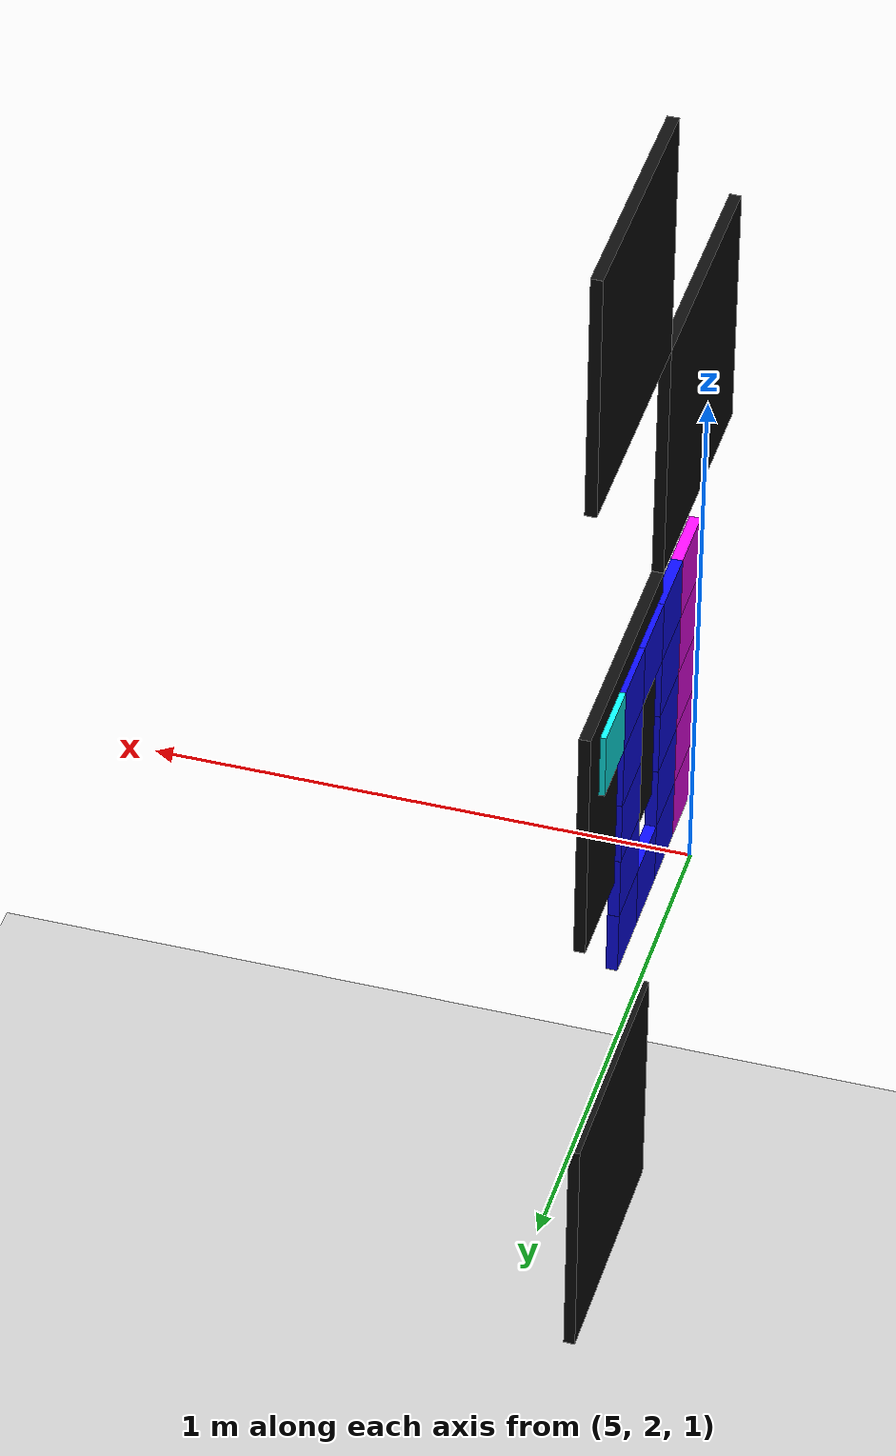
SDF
<sdf version="1.6">
 <world name="collab_workshop">
  <include><uri>model://ground_plane</uri></include>
  <include><uri>model://sun</uri></include>
  <model name="east_b_tile_1_2">
   <pose>4.98 2.625 0.8249999999999998 0 0 0.0</pose>
   <static>true</static>
   <link name="link">
    <visual name="visual">
     <geometry><box><size>0.02 0.45 0.45</size></box></geometry>
     <material><ambient>0.05 0.05 0.05 1</ambient><diffuse>0.05 0.05 0.05 1</diffuse></material>
    </visual>
   </link>
  </model>
  <model name="east_b_tile_3_2">
   <pose>4.98 2.625 1.725 0 0 0.0</pose>
   <static>true</static>
   <link name="link">
    <visual name="visual">
     <geometry><box><size>0.02 0.45 0.45</size></box></geometry>
     <material><ambient>0.05 0.05 0.05 1</ambient><diffuse>0.05 0.05 0.05 1</diffuse></material>
    </visual>
   </link>
  </model>
  <model name="east_b_tile_4_1">
   <pose>4.98 2.175 2.175 0 0 0.0</pose>
   <static>true</static>
   <link name="link">
    <visual name="visual">
     <geometry><box><size>0.02 0.45 0.45</size></box></geometry>
     <material><ambient>0.05 0.05 0.05 1</ambient><diffuse>0.05 0.05 0.05 1</diffuse></material>
    </visual>
   </link>
  </model>
  <model name="east_b_tile_5_2">
   <pose>4.98 2.625 2.625 0 0 0.0</pose>
   <static>true</static>
   <link name="link">
    <visual name="visual">
     <geometry><box><size>0.02 0.45 0.45</size></box></geometry>
     <material><ambient>0.05 0.05 0.05 1</ambient><diffuse>0.05 0.05 0.05 1</diffuse></material>
    </visual>
   </link>
  </model>
  <model name="fac_letter_3_0_2">
   <pose>4.97 2.7300000000000004 1.85 0 0 0.0</pose>
   <static>true</static>
   <link name="link">
    <visual name="visual">
     <geometry><box><size>0.02 0.12 0.12</size></box></geometry>
     <material><ambient>0.049 0.98 0.98 1</ambient><diffuse>0.049 0.98 0.98 1</diffuse></material>
    </visual>
   </link>
  </model>
  <model name="fac_letter_4_0_0">
   <pose>4.97 2.6100000000000003 1.85 0 0 0.0</pose>
   <static>true</static>
   <link name="link">
    <visual name="visual">
     <geometry><box><size>0.02 0.12 0.12</size></box></geometry>
     <material><ambient>0.049 0.049 0.98 1</ambient><diffuse>0.049 0.049 0.98 1</diffuse></material>
    </visual>
   </link>
  </model>
  <model name="fac_letter_4_0_1">
   <pose>4.97 2.49 1.85 0 0 0.0</pose>
   <static>true</static>
   <link name="link">
    <visual name="visual">
     <geometry><box><size>0.02 0.12 0.12</size></box></geometry>
     <material><ambient>0.049 0.049 0.98 1</ambient><diffuse>0.049 0.049 0.98 1</diffuse></material>
    </visual>
   </link>
  </model>
  <model name="fac_letter_4_0_2">
   <pose>4.97 2.37 1.85 0 0 0.0</pose>
   <static>true</static>
   <link name="link">
    <visual name="visual">
     <geometry><box><size>0.02 0.12 0.12</size></box></geometry>
     <material><ambient>0.049 0.049 0.98 1</ambient><diffuse>0.049 0.049 0.98 1</diffuse></material>
    </visual>
   </link>
  </model>
  <model name="fac_letter_4_1_0">
   <pose>4.97 2.6100000000000003 1.73 0 0 0.0</pose>
   <static>true</static>
   <link name="link">
    <visual name="visual">
     <geometry><box><size>0.02 0.12 0.12</size></box></geometry>
     <material><ambient>0.049 0.049 0.98 1</ambient><diffuse>0.049 0.049 0.98 1</diffuse></material>
    </visual>
   </link>
  </model>
  <model name="fac_letter_4_1_2">
   <pose>4.97 2.37 1.73 0 0 0.0</pose>
   <static>true</static>
   <link name="link">
    <visual name="visual">
     <geometry><box><size>0.02 0.12 0.12</size></box></geometry>
     <material><ambient>0.049 0.049 0.98 1</ambient><diffuse>0.049 0.049 0.98 1</diffuse></material>
    </visual>
   </link>
  </model>
  <model name="fac_letter_4_2_0">
   <pose>4.97 2.6100000000000003 1.61 0 0 0.0</pose>
   <static>true</static>
   <link name="link">
    <visual name="visual">
     <geometry><box><size>0.02 0.12 0.12</size></box></geometry>
     <material><ambient>0.049 0.049 0.98 1</ambient><diffuse>0.049 0.049 0.98 1</diffuse></material>
    </visual>
   </link>
  </model>
  <model name="fac_letter_4_2_2">
   <pose>4.97 2.37 1.61 0 0 0.0</pose>
   <static>true</static>
   <link name="link">
    <visual name="visual">
     <geometry><box><size>0.02 0.12 0.12</size></box></geometry>
     <material><ambient>0.049 0.049 0.98 1</ambient><diffuse>0.049 0.049 0.98 1</diffuse></material>
    </visual>
   </link>
  </model>
  <model name="fac_letter_4_3_0">
   <pose>4.97 2.6100000000000003 1.4900000000000002 0 0 0.0</pose>
   <static>true</static>
   <link name="link">
    <visual name="visual">
     <geometry><box><size>0.02 0.12 0.12</size></box></geometry>
     <material><ambient>0.049 0.049 0.98 1</ambient><diffuse>0.049 0.049 0.98 1</diffuse></material>
    </visual>
   </link>
  </model>
  <model name="fac_letter_4_3_2">
   <pose>4.97 2.37 1.4900000000000002 0 0 0.0</pose>
   <static>true</static>
   <link name="link">
    <visual name="visual">
     <geometry><box><size>0.02 0.12 0.12</size></box></geometry>
     <material><ambient>0.049 0.049 0.98 1</ambient><diffuse>0.049 0.049 0.98 1</diffuse></material>
    </visual>
   </link>
  </model>
  <model name="fac_letter_4_4_0">
   <pose>4.97 2.6100000000000003 1.37 0 0 0.0</pose>
   <static>true</static>
   <link name="link">
    <visual name="visual">
     <geometry><box><size>0.02 0.12 0.12</size></box></geometry>
     <material><ambient>0.049 0.049 0.98 1</ambient><diffuse>0.049 0.049 0.98 1</diffuse></material>
    </visual>
   </link>
  </model>
  <model name="fac_letter_4_4_1">
   <pose>4.97 2.49 1.37 0 0 0.0</pose>
   <static>true</static>
   <link name="link">
    <visual name="visual">
     <geometry><box><size>0.02 0.12 0.12</size></box></geometry>
     <material><ambient>0.049 0.049 0.98 1</ambient><diffuse>0.049 0.049 0.98 1</diffuse></material>
    </visual>
   </link>
  </model>
  <model name="fac_letter_4_4_2">
   <pose>4.97 2.37 1.37 0 0 0.0</pose>
   <static>true</static>
   <link name="link">
    <visual name="visual">
     <geometry><box><size>0.02 0.12 0.12</size></box></geometry>
     <material><ambient>0.049 0.049 0.98 1</ambient><diffuse>0.049 0.049 0.98 1</diffuse></material>
    </visual>
   </link>
  </model>
  <model name="fac_letter_5_0_0">
   <pose>4.97 2.2500000000000004 1.85 0 0 0.0</pose>
   <static>true</static>
   <link name="link">
    <visual name="visual">
     <geometry><box><size>0.02 0.12 0.12</size></box></geometry>
     <material><ambient>0.98 0.049 0.98 1</ambient><diffuse>0.98 0.049 0.98 1</diffuse></material>
    </visual>
   </link>
  </model>
  <model name="fac_letter_5_1_0">
   <pose>4.97 2.2500000000000004 1.73 0 0 0.0</pose>
   <static>true</static>
   <link name="link">
    <visual name="visual">
     <geometry><box><size>0.02 0.12 0.12</size></box></geometry>
     <material><ambient>0.98 0.049 0.98 1</ambient><diffuse>0.98 0.049 0.98 1</diffuse></material>
    </visual>
   </link>
  </model>
  <model name="fac_letter_5_2_0">
   <pose>4.97 2.2500000000000004 1.61 0 0 0.0</pose>
   <static>true</static>
   <link name="link">
    <visual name="visual">
     <geometry><box><size>0.02 0.12 0.12</size></box></geometry>
     <material><ambient>0.98 0.049 0.98 1</ambient><diffuse>0.98 0.049 0.98 1</diffuse></material>
    </visual>
   </link>
  </model>
  <model name="fac_letter_5_3_0">
   <pose>4.97 2.2500000000000004 1.4900000000000002 0 0 0.0</pose>
   <static>true</static>
   <link name="link">
    <visual name="visual">
     <geometry><box><size>0.02 0.12 0.12</size></box></geometry>
     <material><ambient>0.98 0.049 0.98 1</ambient><diffuse>0.98 0.049 0.98 1</diffuse></material>
    </visual>
   </link>
  </model>
  <model name="fac_letter_5_4_0">
   <pose>4.97 2.2500000000000004 1.37 0 0 0.0</pose>
   <static>true</static>
   <link name="link">
    <visual name="visual">
     <geometry><box><size>0.02 0.12 0.12</size></box></geometry>
     <material><ambient>0.98 0.049 0.98 1</ambient><diffuse>0.98 0.049 0.98 1</diffuse></material>
    </visual>
   </link>
  </model>
 </world>
</sdf>
